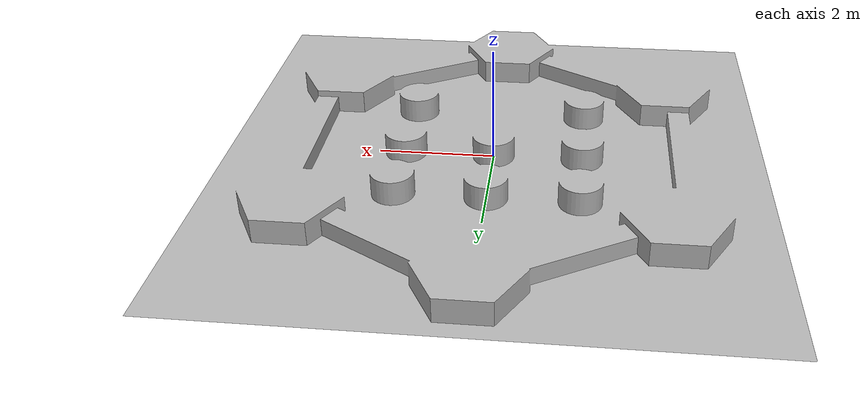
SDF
<?xml version="1.0" ?>
<sdf version='1.4'>
  <model name="turtlebot3_room">
      <static>1</static>
      <link name='link'>
        <visual name='visual'>
          <geometry>
            <mesh>
              <uri>model://turtlebot3_room/meshes/turtleroom_v2.dae</uri>
              <scale>1 1 1</scale>
            </mesh>
          </geometry>
        </visual>
        <collision name='collision'>
          <laser_retro>0</laser_retro>
          <max_contacts>10</max_contacts>
          <pose frame=''>0 0 0 0 -0 0</pose>
          <geometry>
            <mesh>
              <uri>model://turtlebot3_room/meshes/turtleroom_v2.dae</uri>
              <scale>1 1 1</scale>
            </mesh>
          </geometry>
       </collision>

        <velocity_decay>
          <linear>0.000000</linear>
          <angular>0.000000</angular>
        </velocity_decay>
        <self_collide>0</self_collide>
        <kinematic>0</kinematic>
        <gravity>1</gravity>
      </link>
  </model>
</sdf>
